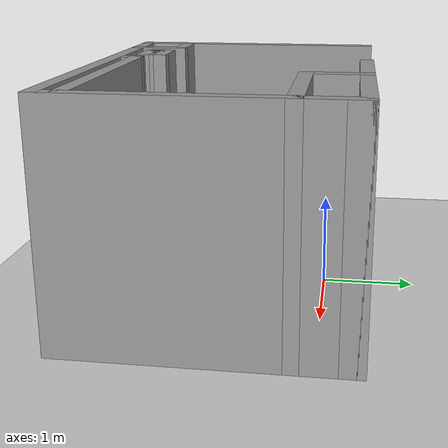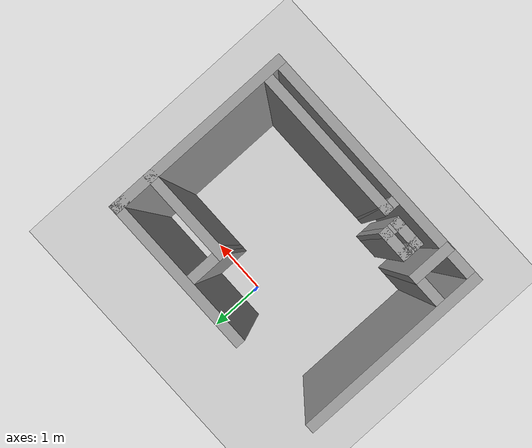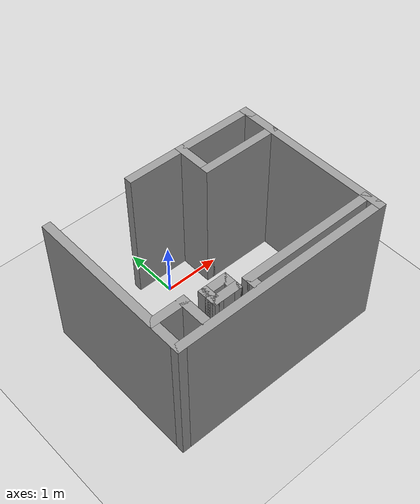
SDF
<sdf version="1.6">
 <world name="default">
  <light name="sun" type="directional">
   <pose>0 0 10 0 -0 0</pose>
   <diffuse>0.8 0.8 0.8 1</diffuse>
   <specular>0.2 0.2 0.2 1</specular>
   <attenuation>
    <range>1000</range>
    <constant>0.9</constant>
    <linear>0.01</linear>
    <quadratic>0.001</quadratic>
   </attenuation>
   <direction>-0.5 0.1 -0.9</direction>
  </light>
  <model name="ground_plane">
   <static>1</static>
   <link name="link">
    <collision name="collision">
     <geometry><plane><normal>0 0 1</normal><size>100 100</size></plane></geometry>
     <surface><friction><ode><mu>100</mu><mu2>50</mu2></ode></friction></surface>
    </collision>
    <visual name="visual">
     <cast_shadows>0</cast_shadows>
     <geometry><plane><normal>0 0 1</normal><size>100 100</size></plane></geometry>
     <material>
      <script><uri>file://media/materials/scripts/gazebo.material</uri><name>Gazebo/Grey</name></script>
     </material>
    </visual>
   </link>
  </model>
  <gravity>0 0 -9.8</gravity>
  <magnetic_field>6e-06 2.3e-05 -4.2e-05</magnetic_field>
  <atmosphere type="adiabatic"/>
  <physics name="default_physics" default="0" type="ode">
   <max_step_size>0.001</max_step_size>
   <real_time_factor>1</real_time_factor>
   <real_time_update_rate>1000</real_time_update_rate>
  </physics>
  <scene><ambient>0.4 0.4 0.4 1</ambient><background>0.7 0.7 0.7 1</background><shadows>1</shadows></scene>
  <spherical_coordinates>
   <surface_model>EARTH_WGS84</surface_model>
   <latitude_deg>0</latitude_deg>
   <longitude_deg>0</longitude_deg>
   <elevation>0</elevation>
   <heading_deg>0</heading_deg>
  </spherical_coordinates>
  <model name="scaled_world">
   <pose>0.120026 -1.0295 0 0 -0 3.13808</pose>
   <link name="Wall_13">
    <collision name="Wall_13_Collision">
     <geometry><box><size>0.15 0.15 2.5</size></box></geometry>
     <pose>0 0 1.25 0 -0 0</pose>
    </collision>
    <visual name="Wall_13_Visual">
     <pose>0 0 1.25 0 -0 0</pose>
     <geometry><box><size>0.15 0.15 2.5</size></box></geometry>
     <material>
      <script><uri>file://media/materials/scripts/gazebo.material</uri><name>Gazebo/Grey</name></script>
      <ambient>1 1 1 1</ambient>
     </material>
     <meta><layer>0</layer></meta>
    </visual>
    <pose>-1.925 -0.825 0 0 -0 0</pose>
   </link>
   <link name="Wall_16">
    <collision name="Wall_16_Collision">
     <geometry><box><size>3 0.15 2.5</size></box></geometry>
     <pose>0 0 1.25 0 -0 0</pose>
    </collision>
    <visual name="Wall_16_Visual">
     <pose>0 0 1.25 0 -0 0</pose>
     <geometry><box><size>3 0.15 2.5</size></box></geometry>
     <material>
      <script><uri>file://media/materials/scripts/gazebo.material</uri><name>Gazebo/Grey</name></script>
      <ambient>1 1 1 1</ambient>
     </material>
     <meta><layer>0</layer></meta>
    </visual>
    <pose>-1.925 0 0 0 -0 1.5708</pose>
   </link>
   <link name="Wall_18">
    <collision name="Wall_18_Collision">
     <geometry><box><size>2.5 0.15 2.5</size></box></geometry>
     <pose>0 0 1.25 0 -0 0</pose>
    </collision>
    <visual name="Wall_18_Visual">
     <pose>0 0 1.25 0 -0 0</pose>
     <geometry><box><size>2.5 0.15 2.5</size></box></geometry>
     <material>
      <script><uri>file://media/materials/scripts/gazebo.material</uri><name>Gazebo/Grey</name></script>
      <ambient>1 1 1 1</ambient>
     </material>
     <meta><layer>0</layer></meta>
    </visual>
    <pose>-0.75 -1.425 0 0 -0 0</pose>
   </link>
   <link name="Wall_21">
    <collision name="Wall_21_Collision">
     <geometry><box><size>2.5 0.15 2.5</size></box></geometry>
     <pose>0 0 1.25 0 -0 0</pose>
    </collision>
    <visual name="Wall_21_Visual">
     <pose>0 0 1.25 0 -0 0</pose>
     <geometry><box><size>2.5 0.15 2.5</size></box></geometry>
     <material>
      <script><uri>file://media/materials/scripts/gazebo.material</uri><name>Gazebo/Grey</name></script>
      <ambient>1 1 1 1</ambient>
     </material>
     <meta><layer>0</layer></meta>
    </visual>
    <pose>-0.72 1.185 0 0 -0 0</pose>
   </link>
   <link name="Wall_25">
    <collision name="Wall_25_Collision">
     <geometry><box><size>0.25 0.15 2.5</size></box></geometry>
     <pose>0 0 1.25 0 -0 0</pose>
    </collision>
    <visual name="Wall_25_Visual">
     <pose>0 0 1.25 0 -0 0</pose>
     <geometry><box><size>0.25 0.15 2.5</size></box></geometry>
     <material>
      <script><uri>file://media/materials/scripts/gazebo.material</uri><name>Gazebo/Grey</name></script>
      <ambient>1 1 1 1</ambient>
     </material>
     <meta><layer>0</layer></meta>
    </visual>
    <pose>0.455 1.235 0 0 -0 1.5708</pose>
   </link>
   <link name="Wall_27">
    <collision name="Wall_27_Collision">
     <geometry><box><size>0.68 0.15 2.5</size></box></geometry>
     <pose>0 0 1.25 0 -0 0</pose>
    </collision>
    <visual name="Wall_27_Visual">
     <pose>0 0 1.25 0 -0 0</pose>
     <geometry><box><size>0.68 0.15 2.5</size></box></geometry>
     <material>
      <script><uri>file://media/materials/scripts/gazebo.material</uri><name>Gazebo/Grey</name></script>
      <ambient>1 1 1 1</ambient>
     </material>
     <meta><layer>0</layer></meta>
    </visual>
    <pose>1.385 1.15 0 0 0 -1.5708</pose>
   </link>
   <link name="Wall_3">
    <collision name="Wall_3_Collision">
     <geometry><box><size>3 0.15 2.5</size></box></geometry>
     <pose>0 0 1.25 0 -0 0</pose>
    </collision>
    <visual name="Wall_3_Visual">
     <pose>0 0 1.25 0 -0 0</pose>
     <geometry><box><size>3 0.15 2.5</size></box></geometry>
     <material>
      <script><uri>file://media/materials/scripts/gazebo.material</uri><name>Gazebo/Grey</name></script>
      <ambient>1 1 1 1</ambient>
     </material>
     <meta><layer>0</layer></meta>
    </visual>
    <pose>1.925 0 0 0 -0 1.5708</pose>
   </link>
   <link name="Wall_34">
    <collision name="Wall_34_Collision">
     <geometry><box><size>0.68 0.15 2.5</size></box></geometry>
     <pose>0 0 1.25 0 -0 0</pose>
    </collision>
    <visual name="Wall_34_Visual">
     <pose>0 0 1.25 0 -0 0</pose>
     <geometry><box><size>0.68 0.15 2.5</size></box></geometry>
     <material>
      <script><uri>file://media/materials/scripts/gazebo.material</uri><name>Gazebo/Grey</name></script>
      <ambient>1 1 1 1</ambient>
     </material>
     <meta><layer>0</layer></meta>
    </visual>
    <pose>1.65 0.885 0 0 -0 3.14159</pose>
   </link>
   <link name="Wall_37">
    <collision name="Wall_37_Collision">
     <geometry><box><size>0.5 0.15 2.5</size></box></geometry>
     <pose>0 0 1.25 0 -0 0</pose>
    </collision>
    <visual name="Wall_37_Visual">
     <pose>0 0 1.25 0 -0 0</pose>
     <geometry><box><size>0.5 0.15 2.5</size></box></geometry>
     <material>
      <script><uri>file://media/materials/scripts/gazebo.material</uri><name>Gazebo/Grey</name></script>
      <ambient>1 1 1 1</ambient>
     </material>
     <meta><layer>0</layer></meta>
    </visual>
    <pose>0.88 1.165 0 0 -0 0</pose>
   </link>
   <link name="Wall_38">
    <collision name="Wall_38_Collision">
     <geometry><box><size>0.25 0.15 2.5</size></box></geometry>
     <pose>0 0 1.25 0 -0 0</pose>
    </collision>
    <visual name="Wall_38_Visual">
     <pose>0 0 1.25 0 -0 0</pose>
     <geometry><box><size>0.25 0.15 2.5</size></box></geometry>
     <material>
      <script><uri>file://media/materials/scripts/gazebo.material</uri><name>Gazebo/Grey</name></script>
      <ambient>1 1 1 1</ambient>
     </material>
     <meta><layer>0</layer></meta>
    </visual>
    <pose>1.055 1.115 0 0 0 -1.5708</pose>
   </link>
   <link name="Wall_39">
    <collision name="Wall_39_Collision">
     <geometry><box><size>0.15 0.15 2.5</size></box></geometry>
     <pose>0 0 1.25 0 -0 0</pose>
    </collision>
    <visual name="Wall_39_Visual">
     <pose>0 0 1.25 0 -0 0</pose>
     <geometry><box><size>0.15 0.15 2.5</size></box></geometry>
     <material>
      <script><uri>file://media/materials/scripts/gazebo.material</uri><name>Gazebo/Grey</name></script>
      <ambient>1 1 1 1</ambient>
     </material>
     <meta><layer>0</layer></meta>
    </visual>
    <pose>1.055 1.065 0 0 -0 0</pose>
   </link>
   <link name="Wall_4">
    <collision name="Wall_4_Collision">
     <geometry><box><size>4 0.15 2.5</size></box></geometry>
     <pose>0 0 1.25 0 -0 0</pose>
    </collision>
    <visual name="Wall_4_Visual">
     <pose>0 0 1.25 0 -0 0</pose>
     <geometry><box><size>4 0.15 2.5</size></box></geometry>
     <material>
      <script><uri>file://media/materials/scripts/gazebo.material</uri><name>Gazebo/Grey</name></script>
      <ambient>1 1 1 1</ambient>
     </material>
     <meta><layer>0</layer></meta>
    </visual>
    <pose>0 1.425 0 0 -0 3.14159</pose>
   </link>
   <link name="Wall_40">
    <collision name="Wall_40_Collision">
     <geometry><box><size>0.25 0.15 2.5</size></box></geometry>
     <pose>0 0 1.25 0 -0 0</pose>
    </collision>
    <visual name="Wall_40_Visual">
     <pose>0 0 1.25 0 -0 0</pose>
     <geometry><box><size>0.25 0.15 2.5</size></box></geometry>
     <material>
      <script><uri>file://media/materials/scripts/gazebo.material</uri><name>Gazebo/Grey</name></script>
      <ambient>1 1 1 1</ambient>
     </material>
     <meta><layer>0</layer></meta>
    </visual>
    <pose>1.055 1.015 0 0 0 -1.5708</pose>
   </link>
   <link name="Wall_41">
    <collision name="Wall_41_Collision">
     <geometry><box><size>0.5 0.15 2.5</size></box></geometry>
     <pose>0 0 1.25 0 -0 0</pose>
    </collision>
    <visual name="Wall_41_Visual">
     <pose>0 0 1.25 0 -0 0</pose>
     <geometry><box><size>0.5 0.15 2.5</size></box></geometry>
     <material>
      <script><uri>file://media/materials/scripts/gazebo.material</uri><name>Gazebo/Grey</name></script>
      <ambient>1 1 1 1</ambient>
     </material>
     <meta><layer>0</layer></meta>
    </visual>
    <pose>0.88 0.965 0 0 -0 3.14159</pose>
   </link>
   <link name="Wall_42">
    <collision name="Wall_42_Collision">
     <geometry><box><size>0.35 0.15 2.5</size></box></geometry>
     <pose>0 0 1.25 0 -0 0</pose>
    </collision>
    <visual name="Wall_42_Visual">
     <pose>0 0 1.25 0 -0 0</pose>
     <geometry><box><size>0.35 0.15 2.5</size></box></geometry>
     <material>
      <script><uri>file://media/materials/scripts/gazebo.material</uri><name>Gazebo/Grey</name></script>
      <ambient>1 1 1 1</ambient>
     </material>
     <meta><layer>0</layer></meta>
    </visual>
    <pose>0.705 1.065 0 0 -0 1.5708</pose>
   </link>
   <link name="Wall_46">
    <collision name="Wall_46_Collision">
     <geometry><box><size>0.25 0.15 2.5</size></box></geometry>
     <pose>0 0 1.25 0 -0 0</pose>
    </collision>
    <visual name="Wall_46_Visual">
     <pose>0 0 1.25 0 -0 0</pose>
     <geometry><box><size>0.25 0.15 2.5</size></box></geometry>
     <material>
      <script><uri>file://media/materials/scripts/gazebo.material</uri><name>Gazebo/Grey</name></script>
      <ambient>1 1 1 1</ambient>
     </material>
     <meta><layer>0</layer></meta>
    </visual>
    <pose>-1.925 -1.375 0 0 -0 1.5708</pose>
   </link>
   <link name="Wall_48">
    <collision name="Wall_48_Collision">
     <geometry><box><size>1.51 0.15 2.5</size></box></geometry>
     <pose>0 0 1.25 0 -0 0</pose>
    </collision>
    <visual name="Wall_48_Visual">
     <pose>0 0 1.25 0 -0 0</pose>
     <geometry><box><size>1.51 0.15 2.5</size></box></geometry>
     <material>
      <script><uri>file://media/materials/scripts/gazebo.material</uri><name>Gazebo/Grey</name></script>
      <ambient>1 1 1 1</ambient>
     </material>
     <meta><layer>0</layer></meta>
    </visual>
    <pose>-1.245 -0.825 0 0 -0 0</pose>
   </link>
   <link name="Wall_55">
    <collision name="Wall_55_Collision">
     <geometry><box><size>0.75 0.15 2.5</size></box></geometry>
     <pose>0 0 1.25 0 -0 0</pose>
    </collision>
    <visual name="Wall_55_Visual">
     <pose>0 0 1.25 0 -0 0</pose>
     <geometry><box><size>0.75 0.15 2.5</size></box></geometry>
     <material>
      <script><uri>file://media/materials/scripts/gazebo.material</uri><name>Gazebo/Grey</name></script>
      <ambient>1 1 1 1</ambient>
     </material>
     <meta><layer>0</layer></meta>
    </visual>
    <pose>-0.565 -1.125 0 0 0 -1.5708</pose>
   </link>
   <link name="Wall_6">
    <collision name="Wall_6_Collision">
     <geometry><box><size>0.15 0.15 2.5</size></box></geometry>
     <pose>0 0 1.25 0 -0 0</pose>
    </collision>
    <visual name="Wall_6_Visual">
     <pose>0 0 1.25 0 -0 0</pose>
     <geometry><box><size>0.15 0.15 2.5</size></box></geometry>
     <material>
      <script><uri>file://media/materials/scripts/gazebo.material</uri><name>Gazebo/Grey</name></script>
      <ambient>1 1 1 1</ambient>
     </material>
     <meta><layer>0</layer></meta>
    </visual>
    <pose>-1.925 -1.425 0 0 -0 0</pose>
   </link>
   <link name="Wall_8">
    <collision name="Wall_8_Collision">
     <geometry><box><size>0.15 0.15 2.5</size></box></geometry>
     <pose>0 0 1.25 0 -0 0</pose>
    </collision>
    <visual name="Wall_8_Visual">
     <pose>0 0 1.25 0 -0 0</pose>
     <geometry><box><size>0.15 0.15 2.5</size></box></geometry>
     <material>
      <script><uri>file://media/materials/scripts/gazebo.material</uri><name>Gazebo/Grey</name></script>
      <ambient>1 1 1 1</ambient>
     </material>
     <meta><layer>0</layer></meta>
    </visual>
    <pose>-1.925 -0.825 0 0 -0 0</pose>
   </link>
   <static>1</static>
  </model>
 </world>
</sdf>
